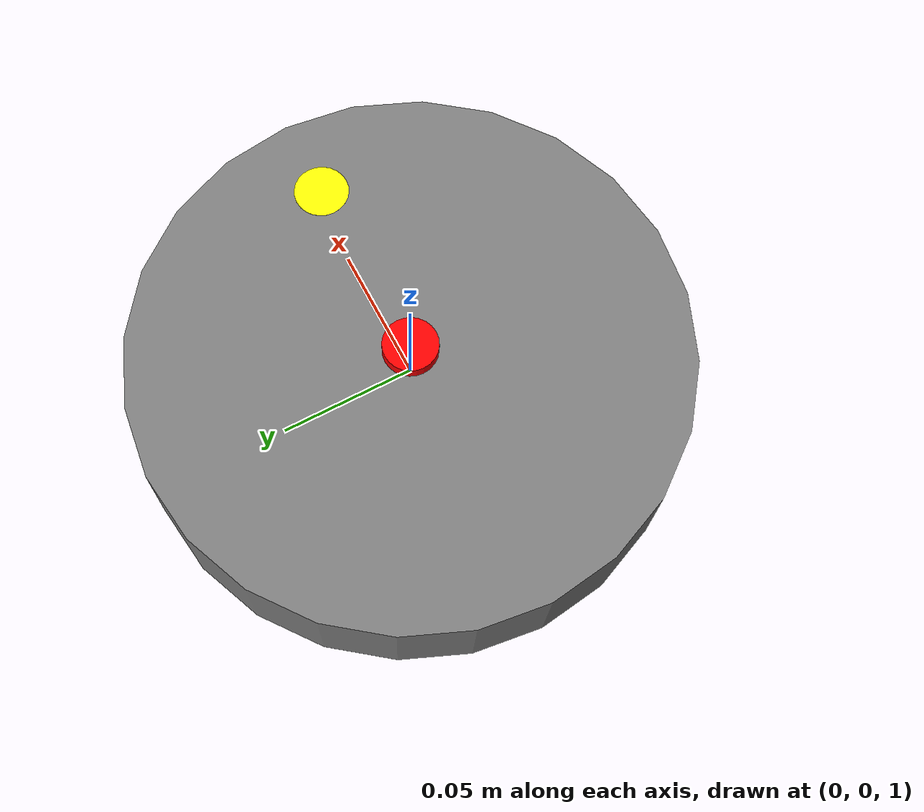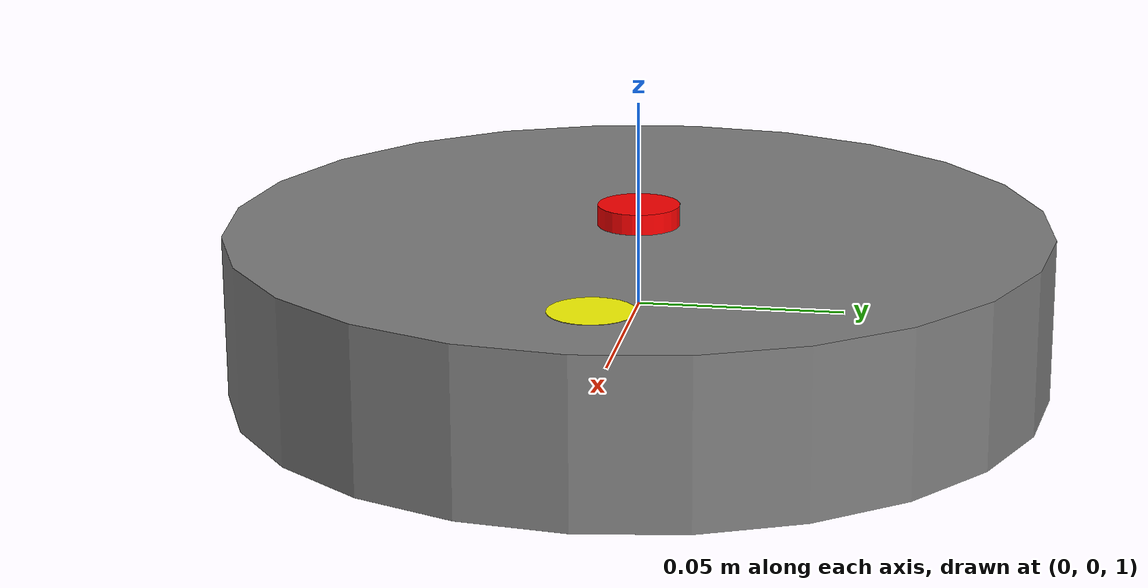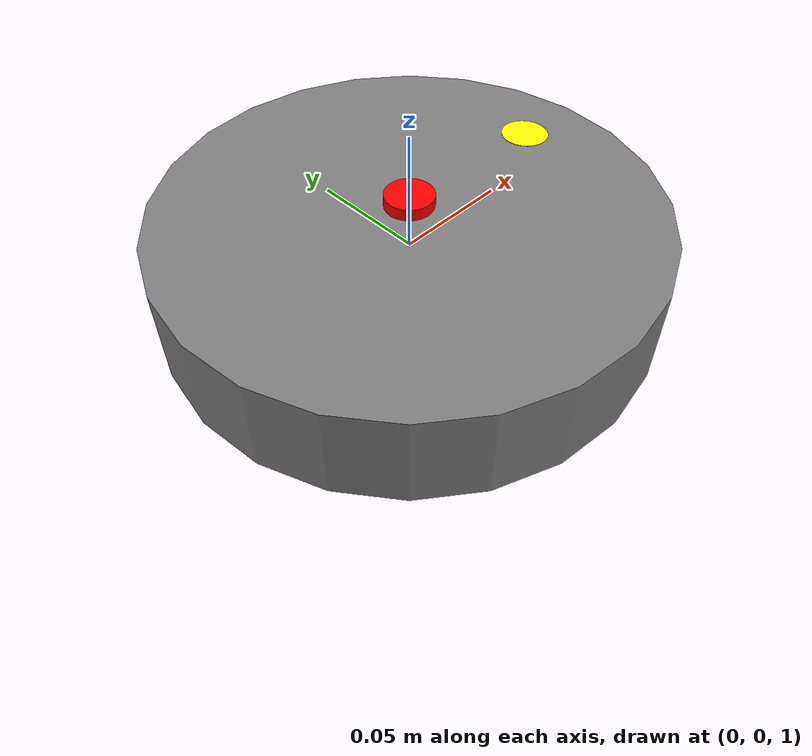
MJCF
<mujoco model="motor_test">
    <option integrator="RK4" timestep="1e-5" />
    <worldbody>
        <body name="base" pos="0 0 0">
            <!-- 回転する円盤 -->
            <body name="disk" pos="0 0 1">
                <joint name="disk_joint" type="hinge" axis="0 0 1" limited="false"/>
                <geom type="cylinder" size="0.1 0.02" rgba="0.5 0.5 0.5 1"/>
                <site name="torque_sensor" type="cylinder" size="0.01 0.025" rgba="1 0 0 1"/>
                <site name="maker" type="cylinder" size="0.01 0.0201" pos="0.07 0 0" rgba="1 1 0 1"/>

            </body>
        </body>
    </worldbody>
    <actuator>
        <!-- アクチュエーター定義 -->
        <motor name="disk_motor" joint="disk_joint" gear="1"/>
    </actuator>
    <sensor>
        <!-- トルクセンサー定義 -->
        <torque name="disk_torque_sensor" site="torque_sensor"/>
    </sensor>
</mujoco>
